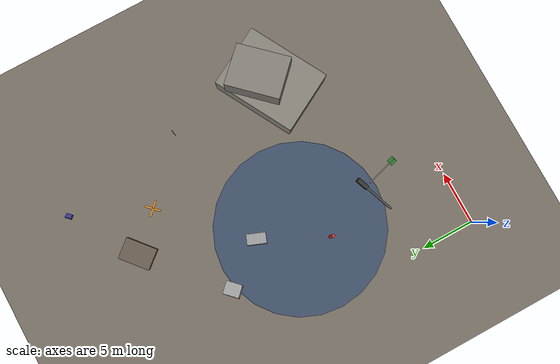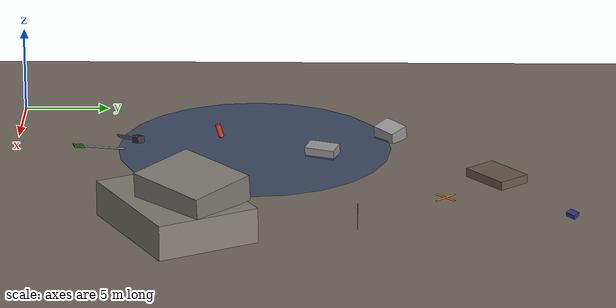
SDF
<sdf version="1.9">
 <world name="earthquake_zone">
  <model name="ground_plane">
   <static>true</static>
   <link name="link">
    <collision name="collision">
     <geometry><plane><normal>0 0 1</normal><size>300 300</size></plane></geometry>
     <surface><friction><ode><mu>100</mu><mu2>50</mu2></ode></friction></surface>
    </collision>
    <visual name="visual">
     <geometry><plane><normal>0 0 1</normal><size>300 300</size></plane></geometry>
     <material>
      <ambient>0.35 0.32 0.28 1</ambient>
      <diffuse>0.45 0.42 0.38 1</diffuse>
      <specular>0.05 0.05 0.05 1</specular>
     </material>
    </visual>
   </link>
  </model>
  <model name="traffic_light_fallen">
   <static>true</static>
   <pose>5 6 0 0 1.3 0.4</pose>
   <link name="pole">
    <collision name="col">
     <geometry><cylinder><radius>0.1</radius><length>7</length></cylinder></geometry>
    </collision>
    <visual name="vis">
     <geometry><cylinder><radius>0.1</radius><length>7</length></cylinder></geometry>
     <material><ambient>0.25 0.25 0.25 1</ambient><diffuse>0.35 0.35 0.35 1</diffuse></material>
    </visual>
   </link>
   <link name="signal_box">
    <pose>0 0 3.2 0 0 0</pose>
    <collision name="col"><geometry><box><size>0.4 0.4 1.2</size></box></geometry></collision>
    <visual name="vis">
     <geometry><box><size>0.4 0.4 1.2</size></box></geometry>
     <material><ambient>0.15 0.15 0.15 1</ambient><diffuse>0.2 0.2 0.2 1</diffuse></material>
    </visual>
   </link>
  </model>
  <model name="search_flag_1">
   <static>true</static>
   <pose>20 20 0 0 0 0</pose>
   <link name="pole">
    <visual name="vis">
     <pose>0 0 0.75 0 0 0</pose>
     <geometry><cylinder><radius>0.02</radius><length>1.5</length></cylinder></geometry>
     <material><ambient>0.5 0.5 0.5 1</ambient><diffuse>0.6 0.6 0.6 1</diffuse></material>
    </visual>
   </link>
   <link name="flag">
    <pose>0.15 0 1.35 0 0 0</pose>
    <visual name="vis">
     <geometry><box><size>0.3 0.02 0.2</size></box></geometry>
     <material><ambient>0.1 0.7 0.1 1</ambient><diffuse>0.2 0.8 0.2 1</diffuse></material>
    </visual>
   </link>
  </model>
  <model name="spray_marker_1">
   <static>true</static>
   <pose>15 25 0.02 0 0 0.785</pose>
   <link name="link">
    <visual name="line1">
     <geometry><box><size>1.5 0.15 0.01</size></box></geometry>
     <material><ambient>0.9 0.5 0.0 1</ambient><diffuse>1.0 0.6 0.1 1</diffuse></material>
    </visual>
    <visual name="line2">
     <pose>0 0 0 0 0 1.57</pose>
     <geometry><box><size>1.5 0.15 0.01</size></box></geometry>
     <material><ambient>0.9 0.5 0.0 1</ambient><diffuse>1.0 0.6 0.1 1</diffuse></material>
    </visual>
   </link>
  </model>
  <model name="rubble_large_1">
   <static>true</static>
   <pose>20 10 0 0 0 0.5</pose>
   <link name="base">
    <collision name="col"><geometry><box><size>8 6 2</size></box></geometry></collision>
    <visual name="vis">
     <pose>0 0 1 0 0 0</pose>
     <geometry><box><size>8 6 2</size></box></geometry>
     <material><ambient>0.42 0.4 0.36 1</ambient><diffuse>0.52 0.5 0.46 1</diffuse></material>
    </visual>
   </link>
   <link name="top">
    <pose>1 0.5 2 0.1 0.05 0.3</pose>
    <collision name="col"><geometry><box><size>5 4 1.5</size></box></geometry></collision>
    <visual name="vis">
     <pose>0 0 0.75 0 0 0</pose>
     <geometry><box><size>5 4 1.5</size></box></geometry>
     <material><ambient>0.4 0.38 0.35 1</ambient><diffuse>0.5 0.48 0.45 1</diffuse></material>
    </visual>
   </link>
  </model>
  <model name="concrete_chunk_1">
   <static>true</static>
   <pose>5 22 0 0.2 0.1 0.8</pose>
   <link name="link">
    <collision name="col"><geometry><box><size>1.5 1.2 0.8</size></box></geometry></collision>
    <visual name="vis">
     <pose>0 0 0.4 0 0 0</pose>
     <geometry><box><size>1.5 1.2 0.8</size></box></geometry>
     <material><ambient>0.5 0.5 0.5 1</ambient><diffuse>0.6 0.6 0.6 1</diffuse></material>
    </visual>
   </link>
  </model>
  <model name="concrete_chunk_2">
   <static>true</static>
   <pose>8 18 0 0.15 0 1.2</pose>
   <link name="link">
    <collision name="col"><geometry><box><size>1.8 1 0.6</size></box></geometry></collision>
    <visual name="vis">
     <pose>0 0 0.3 0 0 0</pose>
     <geometry><box><size>1.8 1 0.6</size></box></geometry>
     <material><ambient>0.48 0.48 0.48 1</ambient><diffuse>0.58 0.58 0.58 1</diffuse></material>
    </visual>
   </link>
  </model>
  <model name="rebar_pile">
   <static>true</static>
   <pose>12 28 0 0 0 0.7</pose>
   <link name="link">
    <collision name="col"><geometry><box><size>3 2 0.5</size></box></geometry></collision>
    <visual name="vis">
     <pose>0 0 0.25 0 0 0</pose>
     <geometry><box><size>3 2 0.5</size></box></geometry>
     <material><ambient>0.3 0.25 0.2 1</ambient><diffuse>0.4 0.35 0.3 1</diffuse></material>
    </visual>
   </link>
  </model>
  <model name="suitcase">
   <static>true</static>
   <pose>18 32 0.2 0.3 0.1 0.8</pose>
   <link name="link">
    <visual name="vis">
     <geometry><box><size>0.6 0.4 0.25</size></box></geometry>
     <material><ambient>0.15 0.15 0.4 1</ambient><diffuse>0.2 0.2 0.5 1</diffuse></material>
    </visual>
   </link>
  </model>
  <model name="street_sign_fallen">
   <static>true</static>
   <pose>8 5 0.4 1.4 0 0.3</pose>
   <link name="pole">
    <visual name="vis">
     <geometry><cylinder><radius>0.05</radius><length>3</length></cylinder></geometry>
     <material><ambient>0.4 0.4 0.4 1</ambient><diffuse>0.5 0.5 0.5 1</diffuse></material>
    </visual>
   </link>
   <link name="sign">
    <pose>0 0 1.3 0 0 0</pose>
    <visual name="vis">
     <geometry><box><size>0.6 0.05 0.6</size></box></geometry>
     <material><ambient>0.1 0.4 0.1 1</ambient><diffuse>0.15 0.5 0.15 1</diffuse></material>
    </visual>
   </link>
  </model>
  <model name="hydrant_burst">
   <static>true</static>
   <pose>5 12 0 0.3 0 0</pose>
   <link name="link">
    <collision name="col">
     <pose>0 0 0.4 0 0 0</pose>
     <geometry><cylinder><radius>0.15</radius><length>0.8</length></cylinder></geometry>
    </collision>
    <visual name="vis">
     <pose>0 0 0.4 0 0 0</pose>
     <geometry><cylinder><radius>0.15</radius><length>0.8</length></cylinder></geometry>
     <material><ambient>0.7 0.15 0.1 1</ambient><diffuse>0.85 0.2 0.15 1</diffuse></material>
    </visual>
    <particle_emitter name="water_spray" type="box">
     <pose>0.2 0 0.6 0 1.2 0</pose>
     <emitting>true</emitting>
     <size>0.3 0.2 0.1</size>
     <particle_size>0.3 0.3 0.3</particle_size>
     <lifetime>2</lifetime>
     <min_velocity>3</min_velocity>
     <max_velocity>5</max_velocity>
     <scale_rate>0.5</scale_rate>
     <rate>20</rate>
     <material><diffuse>0.4 0.5 0.8 0.6</diffuse></material>
    </particle_emitter>
   </link>
  </model>
  <model name="flooded_area">
   <static>true</static>
   <pose>7 14 0.02 0 0 0</pose>
   <link name="water">
    <visual name="water_surface">
     <geometry><cylinder><radius>8</radius><length>0.04</length></cylinder></geometry>
     <material>
      <ambient>0.15 0.25 0.35 0.7</ambient>
      <diffuse>0.2 0.3 0.45 0.7</diffuse>
      <specular>0.8 0.8 0.9 1</specular>
     </material>
    </visual>
   </link>
  </model>
  <model name="water_puddle">
   <static>true</static>
   <pose>7 13 0.01 0 0 0</pose>
   <link name="link">
    <visual name="vis">
     <geometry><cylinder><radius>3</radius><length>0.02</length></cylinder></geometry>
     <material>
      <ambient>0.2 0.3 0.4 0.7</ambient>
      <diffuse>0.25 0.35 0.45 0.7</diffuse>
      <specular>0.5 0.5 0.5 1</specular>
     </material>
    </visual>
   </link>
  </model>
 </world>
</sdf>
